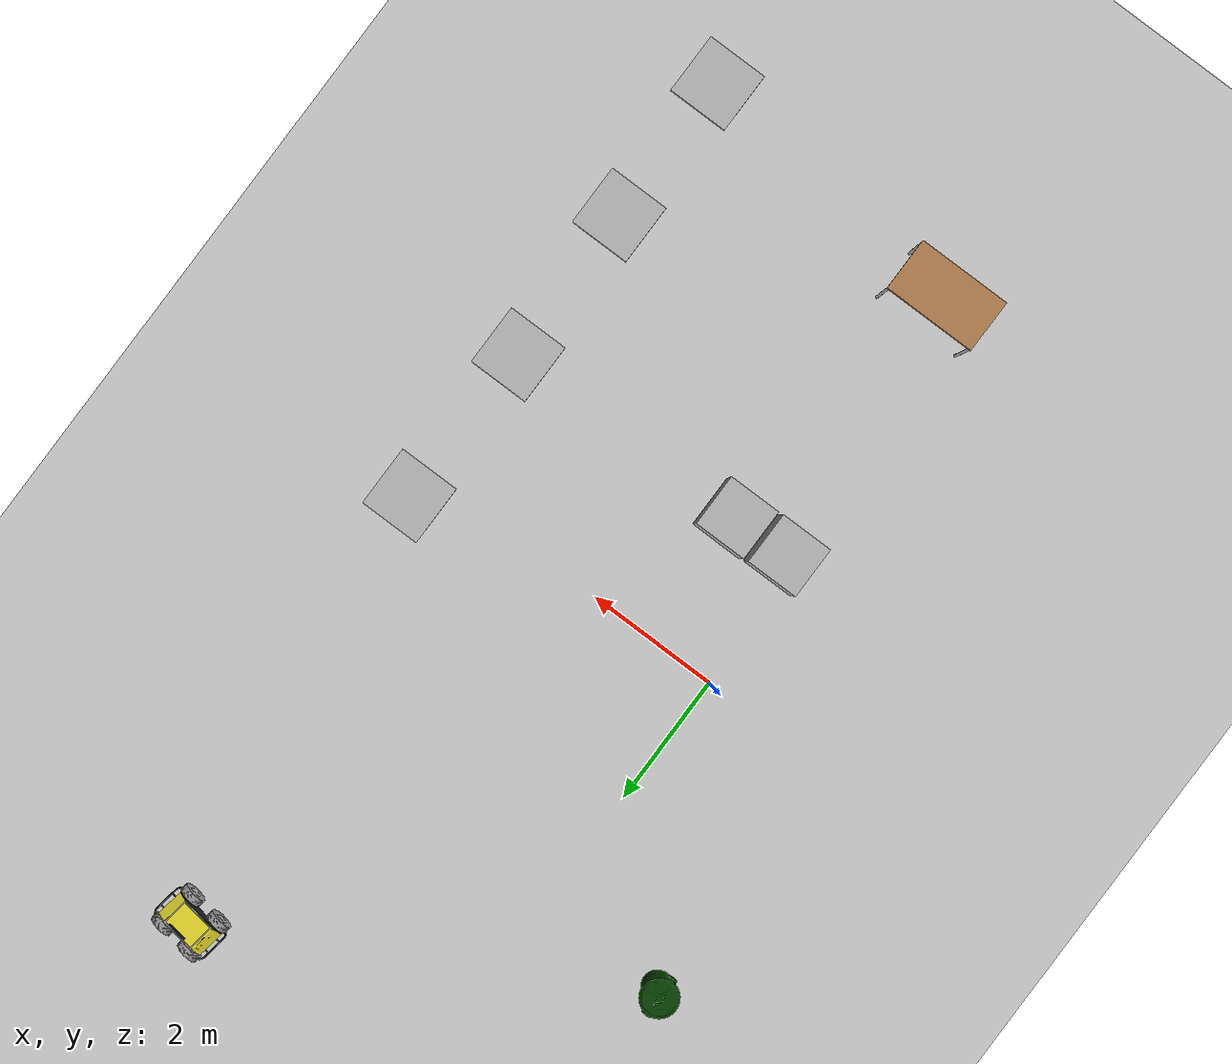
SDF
<sdf version="1.6">
 <world name="default">
  <light name="sun" type="directional">
   <pose>0 0 10 0 -0 0</pose>
   <diffuse>0.8 0.8 0.8 1</diffuse>
   <specular>0.1 0.1 0.1 1</specular>
   <attenuation>
    <range>1000</range>
    <constant>0.9</constant>
    <linear>0.01</linear>
    <quadratic>0.001</quadratic>
   </attenuation>
   <direction>-0.5 0.5 -1</direction>
  </light>
  <model name="ground_plane">
   <static>1</static>
   <link name="link">
    <collision name="collision">
     <geometry><plane><normal>0 0 1</normal><size>100 100</size></plane></geometry>
     <surface><friction><ode><mu>100</mu><mu2>50</mu2></ode></friction></surface>
    </collision>
    <visual name="visual">
     <cast_shadows>0</cast_shadows>
     <geometry><plane><normal>0 0 1</normal><size>100 100</size></plane></geometry>
     <material>
      <script><uri>file://media/materials/scripts/gazebo.material</uri><name>Gazebo/Grey</name></script>
     </material>
    </visual>
   </link>
  </model>
  <gravity>0 0 -9.8</gravity>
  <magnetic_field>6e-06 2.3e-05 -4.2e-05</magnetic_field>
  <atmosphere type="adiabatic"/>
  <physics name="default_physics" default="0" type="ode">
   <max_step_size>0.001</max_step_size>
   <real_time_factor>1</real_time_factor>
   <real_time_update_rate>1000</real_time_update_rate>
  </physics>
  <scene><ambient>0.4 0.4 0.4 1</ambient><background>0.7 0.7 0.7 1</background><shadows>1</shadows></scene>
  <spherical_coordinates>
   <surface_model>EARTH_WGS84</surface_model>
   <latitude_deg>0</latitude_deg>
   <longitude_deg>0</longitude_deg>
   <elevation>0</elevation>
   <heading_deg>0</heading_deg>
  </spherical_coordinates>
  <model name="cafe_table">
   <static>1</static>
   <link name="link">
    <collision name="surface">
     <pose>0 0 0.755 0 -0 0</pose>
     <geometry><box><size>0.913 0.913 0.04</size></box></geometry>
    </collision>
    <collision name="column">
     <pose>0 0 0.37 0 -0 0</pose>
     <geometry><box><size>0.042 0.042 0.74</size></box></geometry>
    </collision>
    <collision name="base">
     <pose>0 0 0.02 0 -0 0</pose>
     <geometry><box><size>0.56 0.56 0.04</size></box></geometry>
    </collision>
    <visual name="visual">
     <geometry><mesh><uri>model://cafe_table/meshes/cafe_table.dae</uri><scale>1 1 1</scale></mesh></geometry>
    </visual>
   </link>
   <pose>4.89783 -6.61352 0 0 -0 0</pose>
  </model>
  <model name="cafe_table_0">
   <static>1</static>
   <link name="link">
    <collision name="surface">
     <pose>0 0 0.755 0 -0 0</pose>
     <geometry><box><size>0.913 0.913 0.04</size></box></geometry>
    </collision>
    <collision name="column">
     <pose>0 0 0.37 0 -0 0</pose>
     <geometry><box><size>0.042 0.042 0.74</size></box></geometry>
    </collision>
    <collision name="base">
     <pose>0 0 0.02 0 -0 0</pose>
     <geometry><box><size>0.56 0.56 0.04</size></box></geometry>
    </collision>
    <visual name="visual">
     <geometry><mesh><uri>model://cafe_table/meshes/cafe_table.dae</uri><scale>1 1 1</scale></mesh></geometry>
    </visual>
   </link>
   <pose>4.89201 -4.37737 0 0 -0 0</pose>
  </model>
  <model name="cafe_table_1">
   <static>1</static>
   <link name="link">
    <collision name="surface">
     <pose>0 0 0.755 0 -0 0</pose>
     <geometry><box><size>0.913 0.913 0.04</size></box></geometry>
    </collision>
    <collision name="column">
     <pose>0 0 0.37 0 -0 0</pose>
     <geometry><box><size>0.042 0.042 0.74</size></box></geometry>
    </collision>
    <collision name="base">
     <pose>0 0 0.02 0 -0 0</pose>
     <geometry><box><size>0.56 0.56 0.04</size></box></geometry>
    </collision>
    <visual name="visual">
     <geometry><mesh><uri>model://cafe_table/meshes/cafe_table.dae</uri><scale>1 1 1</scale></mesh></geometry>
    </visual>
   </link>
   <pose>4.84842 -2.02979 0 0 -0 0</pose>
  </model>
  <model name="cafe_table_2">
   <static>1</static>
   <link name="link">
    <collision name="surface">
     <pose>0 0 0.755 0 -0 0</pose>
     <geometry><box><size>0.913 0.913 0.04</size></box></geometry>
    </collision>
    <collision name="column">
     <pose>0 0 0.37 0 -0 0</pose>
     <geometry><box><size>0.042 0.042 0.74</size></box></geometry>
    </collision>
    <collision name="base">
     <pose>0 0 0.02 0 -0 0</pose>
     <geometry><box><size>0.56 0.56 0.04</size></box></geometry>
    </collision>
    <visual name="visual">
     <geometry><mesh><uri>model://cafe_table/meshes/cafe_table.dae</uri><scale>1 1 1</scale></mesh></geometry>
    </visual>
   </link>
   <pose>4.87951 0.39559 0 0 -0 0</pose>
  </model>
  <model name="first_2015_trash_can">
   <link name="link">
    <inertial>
     <pose>0 0 0.3683 0 -0 0</pose>
     <mass>4.83076</mass>
     <inertia>
      <ixx>0.281534</ixx>
      <ixy>0</ixy>
      <ixz>0</ixz>
      <iyy>0.281534</iyy>
      <iyz>0</iyz>
      <izz>0.126223</izz>
     </inertia>
    </inertial>
    <visual name="visual">
     <geometry>
      <mesh><uri>model://first_2015_trash_can/meshes/trash_can.dae</uri><scale>1 1 1</scale></mesh>
     </geometry>
    </visual>
    <collision name="collision">
     <geometry>
      <mesh><uri>model://first_2015_trash_can/meshes/trash_can.dae</uri><scale>1 1 1</scale></mesh>
     </geometry>
    </collision>
   </link>
   <pose>-1.92515 3.7985 0.1898 1.5e-05 -2e-06 -0.008478</pose>
  </model>
  <model name="husky">
   <pose>3.78046 6.94167 0.332552 0 -6e-06 -0.155492</pose>
   <link name="base_link">
    <collision name="collision">
     <pose>0 0 0.1 0 -0 0</pose>
     <geometry><box><size>1.0074 0.5709 0.2675</size></box></geometry>
    </collision>
    <inertial>
     <mass>33.855</mass>
     <pose>-0.085613 -0.00084 0.238145 0 -0 0</pose>
     <inertia>
      <ixx>2.2343</ixx>
      <ixy>-0.023642</ixy>
      <ixz>0.275174</ixz>
      <iyy>3.42518</iyy>
      <iyz>0.00239624</iyz>
      <izz>2.1241</izz>
     </inertia>
    </inertial>
    <visual name="base">
     <geometry><mesh><uri>model://husky/meshes/base_link.stl</uri><scale>1 1 1</scale></mesh></geometry>
     <material><script><name>Gazebo/FlatBlack</name><uri>__default__</uri></script></material>
    </visual>
    <visual name="top_plate">
     <geometry><mesh><uri>model://husky/meshes/top_plate.stl</uri><scale>1 1 1</scale></mesh></geometry>
     <material><script><name>Gazebo/Yellow</name><uri>__default__</uri></script></material>
    </visual>
    <visual name="front_bumper">
     <pose>0.47 0 0.091 0 -0 0</pose>
     <geometry><mesh><uri>model://husky/meshes/bumper.stl</uri><scale>1 1 1</scale></mesh></geometry>
     <material><script><name>Gazebo/FlatBlack</name><uri>__default__</uri></script></material>
    </visual>
    <visual name="rear_bumper">
     <pose>-0.47 0 0.091 0 -0 3.141</pose>
     <geometry><mesh><uri>model://husky/meshes/bumper.stl</uri><scale>1 1 1</scale></mesh></geometry>
     <material><script><name>Gazebo/FlatBlack</name><uri>__default__</uri></script></material>
    </visual>
    <visual name="user_rail">
     <pose>0.272 0 0.245 0 -0 0</pose>
     <geometry><mesh><uri>model://husky/meshes/user_rail.stl</uri><scale>1 1 1</scale></mesh></geometry>
     <material><script><name>Gazebo/Grey</name><uri>__default__</uri></script></material>
    </visual>
   </link>
   <link name="back_left_wheel">
    <pose>-0.256 0.285475 0.035 0 -0 0</pose>
    <inertial>
     <mass>2.6357</mass>
     <inertia>
      <ixx>0.0246688</ixx>
      <ixy>0</ixy>
      <ixz>0</ixz>
      <iyy>0.0246688</iyy>
      <iyz>0</iyz>
      <izz>0.0441058</izz>
     </inertia>
    </inertial>
    <collision name="back_left_wheel_collision">
     <pose>0 0 0 -1.5707 0 0</pose>
     <geometry><cylinder><radius>0.17775</radius><length>0.1143</length></cylinder></geometry>
     <surface>
      <friction><ode><mu>100000</mu><mu2>100000</mu2><slip1>0</slip1><slip2>0</slip2></ode></friction>
     </surface>
    </collision>
    <visual name="back_left_wheel">
     <pose>0 0 0 -3.14159 0 0</pose>
     <geometry><mesh><uri>model://husky/meshes/wheel.stl</uri><scale>1 1 1</scale></mesh></geometry>
     <material><script><name>Gazebo/Grey</name><uri>__default__</uri></script></material>
    </visual>
   </link>
   <joint name="back_left_joint" type="revolute">
    <parent>base_link</parent>
    <child>back_left_wheel</child>
    <axis>
     <xyz>0 1 0</xyz>
     <use_parent_model_frame>1</use_parent_model_frame>
     <limit><lower>-1e+16</lower><upper>1e+16</upper></limit>
     <dynamics><spring_reference>0</spring_reference><spring_stiffness>0</spring_stiffness></dynamics>
    </axis>
    <physics><ode><limit><cfm>0</cfm><erp>0.9</erp></limit></ode></physics>
   </joint>
   <link name="back_right_wheel">
    <pose>-0.256 -0.285475 0.035 0 -0 0</pose>
    <inertial>
     <mass>2.6357</mass>
     <inertia>
      <ixx>0.0246688</ixx>
      <ixy>0</ixy>
      <ixz>0</ixz>
      <iyy>0.0246688</iyy>
      <iyz>0</iyz>
      <izz>0.0441058</izz>
     </inertia>
    </inertial>
    <collision name="back_right_wheel_collision">
     <pose>0 0 0 -1.5707 0 0</pose>
     <geometry><cylinder><radius>0.17775</radius><length>0.1143</length></cylinder></geometry>
     <surface>
      <friction><ode><mu>100000</mu><mu2>100000</mu2><slip1>0</slip1><slip2>0</slip2></ode></friction>
     </surface>
    </collision>
    <visual name="back_right_wheel">
     <pose>0 0 0 -3.14159 0 0</pose>
     <geometry><mesh><uri>model://husky/meshes/wheel.stl</uri><scale>1 1 1</scale></mesh></geometry>
     <material><script><name>Gazebo/Grey</name><uri>__default__</uri></script></material>
    </visual>
   </link>
   <joint name="back_right_joint" type="revolute">
    <parent>base_link</parent>
    <child>back_right_wheel</child>
    <axis>
     <xyz>0 1 0</xyz>
     <use_parent_model_frame>1</use_parent_model_frame>
     <limit><lower>-1e+16</lower><upper>1e+16</upper></limit>
     <dynamics><spring_reference>0</spring_reference><spring_stiffness>0</spring_stiffness></dynamics>
    </axis>
    <physics><ode><limit><cfm>0</cfm><erp>0.9</erp></limit></ode></physics>
   </joint>
   <link name="front_left_wheel">
    <pose>0.256 0.285475 0.035 0 -0 0</pose>
    <inertial>
     <mass>2.6357</mass>
     <inertia>
      <ixx>0.0246688</ixx>
      <ixy>0</ixy>
      <ixz>0</ixz>
      <iyy>0.0246688</iyy>
      <iyz>0</iyz>
      <izz>0.0441058</izz>
     </inertia>
    </inertial>
    <collision name="front_left_wheel_collision">
     <pose>0 0 0 -1.5707 0 0</pose>
     <geometry><cylinder><radius>0.17775</radius><length>0.1143</length></cylinder></geometry>
     <surface>
      <friction><ode><mu>100000</mu><mu2>100000</mu2><slip1>0</slip1><slip2>0</slip2></ode></friction>
     </surface>
    </collision>
    <visual name="front_left_wheel">
     <pose>0 0 0 -3.14159 0 0</pose>
     <geometry><mesh><uri>model://husky/meshes/wheel.stl</uri><scale>1 1 1</scale></mesh></geometry>
     <material><script><name>Gazebo/Grey</name><uri>__default__</uri></script></material>
    </visual>
   </link>
   <joint name="front_left_joint" type="revolute">
    <parent>base_link</parent>
    <child>front_left_wheel</child>
    <axis>
     <xyz>0 1 0</xyz>
     <use_parent_model_frame>1</use_parent_model_frame>
     <limit><lower>-1e+16</lower><upper>1e+16</upper></limit>
     <dynamics><spring_reference>0</spring_reference><spring_stiffness>0</spring_stiffness></dynamics>
    </axis>
    <physics><ode><limit><cfm>0</cfm><erp>0.9</erp></limit></ode></physics>
   </joint>
   <link name="front_right_wheel">
    <pose>0.256 -0.285475 0.035 0 -0 0</pose>
    <inertial>
     <mass>2.6357</mass>
     <inertia>
      <ixx>0.0246688</ixx>
      <ixy>0</ixy>
      <ixz>0</ixz>
      <iyy>0.0246688</iyy>
      <iyz>0</iyz>
      <izz>0.0441058</izz>
     </inertia>
    </inertial>
    <collision name="front_right_wheel_collision">
     <pose>0 0 0 -1.5707 0 0</pose>
     <geometry><cylinder><radius>0.17775</radius><length>0.1143</length></cylinder></geometry>
     <surface>
      <friction><ode><mu>100000</mu><mu2>100000</mu2><slip1>0</slip1><slip2>0</slip2></ode></friction>
     </surface>
    </collision>
    <visual name="front_right_wheel">
     <pose>0 0 0 -3.14159 0 0</pose>
     <geometry><mesh><uri>model://husky/meshes/wheel.stl</uri><scale>1 1 1</scale></mesh></geometry>
     <material><script><name>Gazebo/Grey</name><uri>__default__</uri></script></material>
    </visual>
   </link>
   <joint name="front_right_joint" type="revolute">
    <parent>base_link</parent>
    <child>front_right_wheel</child>
    <axis>
     <xyz>0 1 0</xyz>
     <use_parent_model_frame>1</use_parent_model_frame>
     <limit><lower>-1e+16</lower><upper>1e+16</upper></limit>
     <dynamics><spring_reference>0</spring_reference><spring_stiffness>0</spring_stiffness></dynamics>
    </axis>
    <physics><ode><limit><cfm>0</cfm><erp>0.9</erp></limit></ode></physics>
   </joint>
   <plugin name="husky_diff_controller" filename="libhusky_gazebo_plugins.so">
    <alwaysOn>true</alwaysOn>
    <updateRate>100.0</updateRate>
    <backLeftJoint>back_left_joint</backLeftJoint>
    <backRightJoint>back_right_joint</backRightJoint>
    <frontLeftJoint>front_left_joint</frontLeftJoint>
    <frontRightJoint>front_right_joint</frontRightJoint>
    <wheelSeparation>0.5709</wheelSeparation>
    <wheelDiameter>0.3555</wheelDiameter>
    <torque>35</torque>
   </plugin>
  </model>
  <model name="number4">
   <pose>0.254726 -2.05894 0.4 0 -0 0</pose>
   <static>1</static>
   <link name="link">
    <visual name="visual">
     <geometry><mesh><uri>model://number1/meshes/number.dae</uri><scale>1 1 1</scale></mesh></geometry>
     <material>
      <script>
       <uri>model://number4/materials/scripts</uri>
       <uri>model://number4/materials/textures</uri>
       <name>Number/Four</name>
      </script>
     </material>
    </visual>
   </link>
  </model>
  <model name="number8">
   <pose>1.12978 -2.04715 0.4 0 -0 0</pose>
   <static>1</static>
   <link name="link">
    <visual name="visual">
     <geometry><mesh><uri>model://number1/meshes/number.dae</uri><scale>1 1 1</scale></mesh></geometry>
     <material>
      <script>
       <uri>model://number8/materials/scripts</uri>
       <uri>model://number8/materials/textures</uri>
       <name>Number/Eight</name>
      </script>
     </material>
    </visual>
   </link>
  </model>
  <model name="table">
   <static>0</static>
   <link name="link">
    <collision name="surface">
     <pose>0 0 1 0 -0 0</pose>
     <geometry><box><size>1.5 0.8 0.03</size></box></geometry>
     <surface><friction><ode><mu>0.6</mu><mu2>0.6</mu2></ode></friction></surface>
    </collision>
    <visual name="visual1">
     <pose>0 0 1 0 -0 0</pose>
     <geometry><box><size>1.4 0.8 0.04</size></box></geometry>
     <material>
      <script><uri>file://media/materials/scripts/gazebo.material</uri><name>Gazebo/Wood</name></script>
     </material>
    </visual>
    <collision name="front_left_leg">
     <pose>0.68 0.38 0.5 0 -0 0</pose>
     <geometry><cylinder><radius>0.02</radius><length>1</length></cylinder></geometry>
    </collision>
    <visual name="front_left_leg">
     <pose>0.68 0.38 0.5 0 -0 0</pose>
     <geometry><cylinder><radius>0.02</radius><length>1</length></cylinder></geometry>
     <material>
      <script><uri>file://media/materials/scripts/gazebo.material</uri><name>Gazebo/Grey</name></script>
     </material>
    </visual>
    <collision name="front_right_leg">
     <pose>0.68 -0.38 0.5 0 -0 0</pose>
     <geometry><cylinder><radius>0.02</radius><length>1</length></cylinder></geometry>
    </collision>
    <visual name="front_right_leg">
     <pose>0.68 -0.38 0.5 0 -0 0</pose>
     <geometry><cylinder><radius>0.02</radius><length>1</length></cylinder></geometry>
     <material>
      <script><uri>file://media/materials/scripts/gazebo.material</uri><name>Gazebo/Grey</name></script>
     </material>
    </visual>
    <collision name="back_right_leg">
     <pose>-0.68 -0.38 0.5 0 -0 0</pose>
     <geometry><cylinder><radius>0.02</radius><length>1</length></cylinder></geometry>
    </collision>
    <visual name="back_right_leg">
     <pose>-0.68 -0.38 0.5 0 -0 0</pose>
     <geometry><cylinder><radius>0.02</radius><length>1</length></cylinder></geometry>
     <material>
      <script><uri>file://media/materials/scripts/gazebo.material</uri><name>Gazebo/Grey</name></script>
     </material>
    </visual>
    <collision name="back_left_leg">
     <pose>-0.68 0.38 0.5 0 -0 0</pose>
     <geometry><cylinder><radius>0.02</radius><length>1</length></cylinder></geometry>
    </collision>
    <visual name="back_left_leg">
     <pose>-0.68 0.38 0.5 0 -0 0</pose>
     <geometry><cylinder><radius>0.02</radius><length>1</length></cylinder></geometry>
     <material>
      <script><uri>file://media/materials/scripts/gazebo.material</uri><name>Gazebo/Grey</name></script>
     </material>
    </visual>
    <inertial>
     <inertia><ixx>1</ixx><ixy>0</ixy><ixz>0</ixz><iyy>1</iyy><iyz>0</iyz><izz>1</izz></inertia>
     <mass>1</mass>
    </inertial>
   </link>
   <pose>0.703905 -6.08277 0.1898 0 -0 0</pose>
  </model>
 </world>
</sdf>
